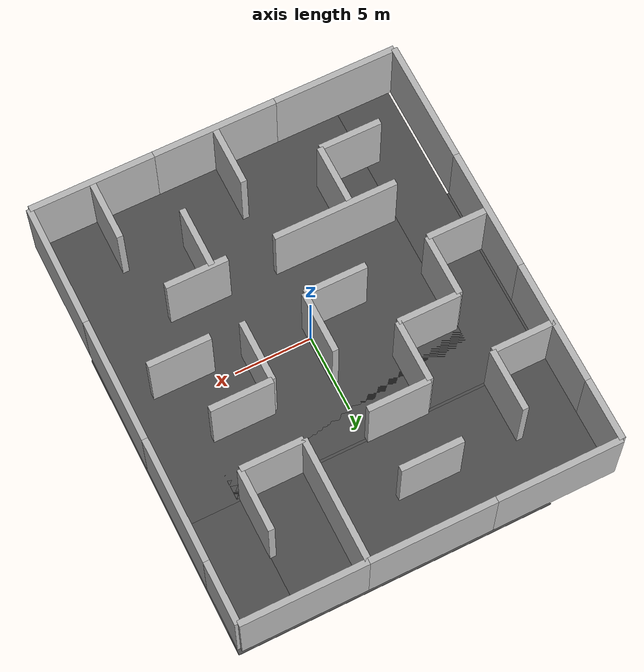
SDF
<sdf version="1.7">
 <world name="default">
  <scene>
   <sky><clouds><speed>3</speed></clouds></sky>
   <ambient>0.4 0.4 0.4 1</ambient>
   <background>0.7 0.7 0.7 1</background>
   <shadows>1</shadows>
  </scene>
  <plugin name="ros_interface_plugin" filename="librotors_gazebo_ros_interface_plugin.so"/>
  <physics name="default_physics" default="0" type="ode">
   <ode>
    <solver>
     <type>quick</type>
     <iters>35</iters>
     <sor>1.3</sor>
     <use_dynamic_moi_rescaling>0</use_dynamic_moi_rescaling>
    </solver>
    <constraints>
     <cfm>0</cfm>
     <erp>0.2</erp>
     <contact_max_correcting_vel>100</contact_max_correcting_vel>
     <contact_surface_layer>0.001</contact_surface_layer>
    </constraints>
   </ode>
   <max_step_size>0.004</max_step_size>
   <real_time_factor>1</real_time_factor>
   <real_time_update_rate>250</real_time_update_rate>
  </physics>
  <light name="sun_2" type="directional">
   <pose>0 0 500 0 -0 0</pose>
   <diffuse>0.95 0.95 0.95 1</diffuse>
   <specular>0.3 0.3 0.3 1</specular>
   <attenuation><range>2000</range><constant>1</constant><linear>0</linear><quadratic>0</quadratic></attenuation>
   <direction>-0.1 0.05 -1</direction>
   <spot><inner_angle>0</inner_angle><outer_angle>0</outer_angle><falloff>0</falloff></spot>
  </light>
  <model name="smaze2d">
   <frame name="w1::__model__" attached_to="w1::link">
    <pose relative_to="__model__">0 4 0 0 -0 1.5708</pose>
   </frame>
   <static>1</static>
   <link name="w1::link">
    <pose relative_to="w1::__model__">0 0 2.5 0 -0 0</pose>
    <collision name="collision"><geometry><box><size>8 0.4 5</size></box></geometry></collision>
    <visual name="visual">
     <geometry><box><size>8 0.4 5</size></box></geometry>
     <material>
      <script>
       <uri>model://smaze_wall/materials/scripts</uri>
       <uri>model://smaze_wall/materials/textures</uri>
       <name>vrc/smaze_wall</name>
      </script>
     </material>
    </visual>
   </link>
   <frame name="w2::__model__" attached_to="w2::link">
    <pose relative_to="__model__">0 12 0 0 -0 1.5708</pose>
   </frame>
   <static>1</static>
   <link name="w2::link">
    <pose relative_to="w2::__model__">0 0 2.5 0 -0 0</pose>
    <collision name="collision"><geometry><box><size>8 0.4 5</size></box></geometry></collision>
    <visual name="visual">
     <geometry><box><size>8 0.4 5</size></box></geometry>
     <material>
      <script>
       <uri>model://smaze_wall/materials/scripts</uri>
       <uri>model://smaze_wall/materials/textures</uri>
       <name>vrc/smaze_wall</name>
      </script>
     </material>
    </visual>
   </link>
   <frame name="w3::__model__" attached_to="w3::link">
    <pose relative_to="__model__">0 20 0 0 -0 1.5708</pose>
   </frame>
   <static>1</static>
   <link name="w3::link">
    <pose relative_to="w3::__model__">0 0 2.5 0 -0 0</pose>
    <collision name="collision"><geometry><box><size>8 0.4 5</size></box></geometry></collision>
    <visual name="visual">
     <geometry><box><size>8 0.4 5</size></box></geometry>
     <material>
      <script>
       <uri>model://smaze_wall/materials/scripts</uri>
       <uri>model://smaze_wall/materials/textures</uri>
       <name>vrc/smaze_wall</name>
      </script>
     </material>
    </visual>
   </link>
   <frame name="w4::__model__" attached_to="w4::link">
    <pose relative_to="__model__">0 26 0 0 -0 1.5708</pose>
   </frame>
   <static>1</static>
   <link name="w4::link">
    <pose relative_to="w4::__model__">0 0 2.5 0 -0 0</pose>
    <collision name="collision"><geometry><box><size>4 0.4 5</size></box></geometry></collision>
    <visual name="visual">
     <geometry><box><size>4 0.4 5</size></box></geometry>
     <material>
      <script>
       <uri>model://smaze_wall_short/materials/scripts</uri>
       <uri>model://smaze_wall_short/materials/textures</uri>
       <name>vrc/smaze_wall_short</name>
      </script>
     </material>
    </visual>
   </link>
   <frame name="w5::__model__" attached_to="w5::link">
    <pose relative_to="__model__">24 4 0 0 -0 1.5708</pose>
   </frame>
   <static>1</static>
   <link name="w5::link">
    <pose relative_to="w5::__model__">0 0 2.5 0 -0 0</pose>
    <collision name="collision"><geometry><box><size>8 0.4 5</size></box></geometry></collision>
    <visual name="visual">
     <geometry><box><size>8 0.4 5</size></box></geometry>
     <material>
      <script>
       <uri>model://smaze_wall/materials/scripts</uri>
       <uri>model://smaze_wall/materials/textures</uri>
       <name>vrc/smaze_wall</name>
      </script>
     </material>
    </visual>
   </link>
   <frame name="w6::__model__" attached_to="w6::link">
    <pose relative_to="__model__">24 12 0 0 -0 1.5708</pose>
   </frame>
   <static>1</static>
   <link name="w6::link">
    <pose relative_to="w6::__model__">0 0 2.5 0 -0 0</pose>
    <collision name="collision"><geometry><box><size>8 0.4 5</size></box></geometry></collision>
    <visual name="visual">
     <geometry><box><size>8 0.4 5</size></box></geometry>
     <material>
      <script>
       <uri>model://smaze_wall/materials/scripts</uri>
       <uri>model://smaze_wall/materials/textures</uri>
       <name>vrc/smaze_wall</name>
      </script>
     </material>
    </visual>
   </link>
   <frame name="w7::__model__" attached_to="w7::link">
    <pose relative_to="__model__">24 20 0 0 -0 1.5708</pose>
   </frame>
   <static>1</static>
   <link name="w7::link">
    <pose relative_to="w7::__model__">0 0 2.5 0 -0 0</pose>
    <collision name="collision"><geometry><box><size>8 0.4 5</size></box></geometry></collision>
    <visual name="visual">
     <geometry><box><size>8 0.4 5</size></box></geometry>
     <material>
      <script>
       <uri>model://smaze_wall/materials/scripts</uri>
       <uri>model://smaze_wall/materials/textures</uri>
       <name>vrc/smaze_wall</name>
      </script>
     </material>
    </visual>
   </link>
   <frame name="w8::__model__" attached_to="w8::link">
    <pose relative_to="__model__">24 26 0 0 -0 1.5708</pose>
   </frame>
   <static>1</static>
   <link name="w8::link">
    <pose relative_to="w8::__model__">0 0 2.5 0 -0 0</pose>
    <collision name="collision"><geometry><box><size>4 0.4 5</size></box></geometry></collision>
    <visual name="visual">
     <geometry><box><size>4 0.4 5</size></box></geometry>
     <material>
      <script>
       <uri>model://smaze_wall_short/materials/scripts</uri>
       <uri>model://smaze_wall_short/materials/textures</uri>
       <name>vrc/smaze_wall_short</name>
      </script>
     </material>
    </visual>
   </link>
   <frame name="w11::__model__" attached_to="w11::link"><pose relative_to="__model__">4 0 0 0 -0 0</pose></frame>
   <static>1</static>
   <link name="w11::link">
    <pose relative_to="w11::__model__">0 0 2.5 0 -0 0</pose>
    <collision name="collision"><geometry><box><size>8 0.4 5</size></box></geometry></collision>
    <visual name="visual">
     <geometry><box><size>8 0.4 5</size></box></geometry>
     <material>
      <script>
       <uri>model://smaze_wall/materials/scripts</uri>
       <uri>model://smaze_wall/materials/textures</uri>
       <name>vrc/smaze_wall</name>
      </script>
     </material>
    </visual>
   </link>
   <frame name="w12::__model__" attached_to="w12::link">
    <pose relative_to="__model__">12 0 0 0 -0 0</pose>
   </frame>
   <static>1</static>
   <link name="w12::link">
    <pose relative_to="w12::__model__">0 0 2.5 0 -0 0</pose>
    <collision name="collision"><geometry><box><size>8 0.4 5</size></box></geometry></collision>
    <visual name="visual">
     <geometry><box><size>8 0.4 5</size></box></geometry>
     <material>
      <script>
       <uri>model://smaze_wall/materials/scripts</uri>
       <uri>model://smaze_wall/materials/textures</uri>
       <name>vrc/smaze_wall</name>
      </script>
     </material>
    </visual>
   </link>
   <frame name="w13::__model__" attached_to="w13::link">
    <pose relative_to="__model__">20 0 0 0 -0 0</pose>
   </frame>
   <static>1</static>
   <link name="w13::link">
    <pose relative_to="w13::__model__">0 0 2.5 0 -0 0</pose>
    <collision name="collision"><geometry><box><size>8 0.4 5</size></box></geometry></collision>
    <visual name="visual">
     <geometry><box><size>8 0.4 5</size></box></geometry>
     <material>
      <script>
       <uri>model://smaze_wall/materials/scripts</uri>
       <uri>model://smaze_wall/materials/textures</uri>
       <name>vrc/smaze_wall</name>
      </script>
     </material>
    </visual>
   </link>
   <frame name="w14::__model__" attached_to="w14::link">
    <pose relative_to="__model__">4 28 0 0 -0 0</pose>
   </frame>
   <static>1</static>
   <link name="w14::link">
    <pose relative_to="w14::__model__">0 0 2.5 0 -0 0</pose>
    <collision name="collision"><geometry><box><size>8 0.4 5</size></box></geometry></collision>
    <visual name="visual">
     <geometry><box><size>8 0.4 5</size></box></geometry>
     <material>
      <script>
       <uri>model://smaze_wall/materials/scripts</uri>
       <uri>model://smaze_wall/materials/textures</uri>
       <name>vrc/smaze_wall</name>
      </script>
     </material>
    </visual>
   </link>
   <frame name="w15::__model__" attached_to="w15::link">
    <pose relative_to="__model__">12 28 0 0 -0 0</pose>
   </frame>
   <static>1</static>
   <link name="w15::link">
    <pose relative_to="w15::__model__">0 0 2.5 0 -0 0</pose>
    <collision name="collision"><geometry><box><size>8 0.4 5</size></box></geometry></collision>
    <visual name="visual">
     <geometry><box><size>8 0.4 5</size></box></geometry>
     <material>
      <script>
       <uri>model://smaze_wall/materials/scripts</uri>
       <uri>model://smaze_wall/materials/textures</uri>
       <name>vrc/smaze_wall</name>
      </script>
     </material>
    </visual>
   </link>
   <frame name="w16::__model__" attached_to="w16::link">
    <pose relative_to="__model__">20 28 0 0 -0 0</pose>
   </frame>
   <static>1</static>
   <link name="w16::link">
    <pose relative_to="w16::__model__">0 0 2.5 0 -0 0</pose>
    <collision name="collision"><geometry><box><size>8 0.4 5</size></box></geometry></collision>
    <visual name="visual">
     <geometry><box><size>8 0.4 5</size></box></geometry>
     <material>
      <script>
       <uri>model://smaze_wall/materials/scripts</uri>
       <uri>model://smaze_wall/materials/textures</uri>
       <name>vrc/smaze_wall</name>
      </script>
     </material>
    </visual>
   </link>
   <frame name="w17::__model__" attached_to="w17::link">
    <pose relative_to="__model__">10 24 0 0 -0 0</pose>
   </frame>
   <static>1</static>
   <link name="w17::link">
    <pose relative_to="w17::__model__">0 0 2.5 0 -0 0</pose>
    <collision name="collision"><geometry><box><size>4 0.4 5</size></box></geometry></collision>
    <visual name="visual">
     <geometry><box><size>4 0.4 5</size></box></geometry>
     <material>
      <script>
       <uri>model://smaze_wall_short/materials/scripts</uri>
       <uri>model://smaze_wall_short/materials/textures</uri>
       <name>vrc/smaze_wall_short</name>
      </script>
     </material>
    </visual>
   </link>
   <frame name="w18::__model__" attached_to="w18::link">
    <pose relative_to="__model__">10 12 0 0 -0 0</pose>
   </frame>
   <static>1</static>
   <link name="w18::link">
    <pose relative_to="w18::__model__">0 0 2.5 0 -0 0</pose>
    <collision name="collision"><geometry><box><size>4 0.4 5</size></box></geometry></collision>
    <visual name="visual">
     <geometry><box><size>4 0.4 5</size></box></geometry>
     <material>
      <script>
       <uri>model://smaze_wall_short/materials/scripts</uri>
       <uri>model://smaze_wall_short/materials/textures</uri>
       <name>vrc/smaze_wall_short</name>
      </script>
     </material>
    </visual>
   </link>
   <frame name="w19::__model__" attached_to="w19::link"><pose relative_to="__model__">8 8 0 0 -0 0</pose></frame>
   <static>1</static>
   <link name="w19::link">
    <pose relative_to="w19::__model__">0 0 2.5 0 -0 0</pose>
    <collision name="collision"><geometry><box><size>8 0.4 5</size></box></geometry></collision>
    <visual name="visual">
     <geometry><box><size>8 0.4 5</size></box></geometry>
     <material>
      <script>
       <uri>model://smaze_wall/materials/scripts</uri>
       <uri>model://smaze_wall/materials/textures</uri>
       <name>vrc/smaze_wall</name>
      </script>
     </material>
    </visual>
   </link>
   <frame name="w20::__model__" attached_to="w20::link"><pose relative_to="__model__">5 4 0 0 -0 0</pose></frame>
   <static>1</static>
   <link name="w20::link">
    <pose relative_to="w20::__model__">0 0 2.5 0 -0 0</pose>
    <collision name="collision"><geometry><box><size>4 0.4 5</size></box></geometry></collision>
    <visual name="visual">
     <geometry><box><size>4 0.4 5</size></box></geometry>
     <material>
      <script>
       <uri>model://smaze_wall_short/materials/scripts</uri>
       <uri>model://smaze_wall_short/materials/textures</uri>
       <name>vrc/smaze_wall_short</name>
      </script>
     </material>
    </visual>
   </link>
   <frame name="w21::__model__" attached_to="w21::link">
    <pose relative_to="__model__">17 8 0 0 -0 0</pose>
   </frame>
   <static>1</static>
   <link name="w21::link">
    <pose relative_to="w21::__model__">0 0 2.5 0 -0 0</pose>
    <collision name="collision"><geometry><box><size>4 0.4 5</size></box></geometry></collision>
    <visual name="visual">
     <geometry><box><size>4 0.4 5</size></box></geometry>
     <material>
      <script>
       <uri>model://smaze_wall_short/materials/scripts</uri>
       <uri>model://smaze_wall_short/materials/textures</uri>
       <name>vrc/smaze_wall_short</name>
      </script>
     </material>
    </visual>
   </link>
   <frame name="w22::__model__" attached_to="w22::link">
    <pose relative_to="__model__">20 12 0 0 -0 0</pose>
   </frame>
   <static>1</static>
   <link name="w22::link">
    <pose relative_to="w22::__model__">0 0 2.5 0 -0 0</pose>
    <collision name="collision"><geometry><box><size>4 0.4 5</size></box></geometry></collision>
    <visual name="visual">
     <geometry><box><size>4 0.4 5</size></box></geometry>
     <material>
      <script>
       <uri>model://smaze_wall_short/materials/scripts</uri>
       <uri>model://smaze_wall_short/materials/textures</uri>
       <name>vrc/smaze_wall_short</name>
      </script>
     </material>
    </visual>
   </link>
   <frame name="w23::__model__" attached_to="w23::link">
    <pose relative_to="__model__">16 24 0 0 -0 1.5708</pose>
   </frame>
   <static>1</static>
   <link name="w23::link">
    <pose relative_to="w23::__model__">0 0 2.5 0 -0 0</pose>
    <collision name="collision"><geometry><box><size>8 0.4 5</size></box></geometry></collision>
    <visual name="visual">
     <geometry><box><size>8 0.4 5</size></box></geometry>
     <material>
      <script>
       <uri>model://smaze_wall/materials/scripts</uri>
       <uri>model://smaze_wall/materials/textures</uri>
       <name>vrc/smaze_wall</name>
      </script>
     </material>
    </visual>
   </link>
   <frame name="s1::__model__" attached_to="s1::link">
    <pose relative_to="__model__">20 22 0 0 -0 1.5708</pose>
   </frame>
   <static>1</static>
   <link name="s1::link">
    <pose relative_to="s1::__model__">0 0 2.5 0 -0 0</pose>
    <collision name="collision"><geometry><box><size>4 0.4 5</size></box></geometry></collision>
    <visual name="visual">
     <geometry><box><size>4 0.4 5</size></box></geometry>
     <material>
      <script>
       <uri>model://smaze_wall_short/materials/scripts</uri>
       <uri>model://smaze_wall_short/materials/textures</uri>
       <name>vrc/smaze_wall_short</name>
      </script>
     </material>
    </visual>
   </link>
   <frame name="s2::__model__" attached_to="s2::link">
    <pose relative_to="__model__">16 14 0 0 -0 1.5708</pose>
   </frame>
   <static>1</static>
   <link name="s2::link">
    <pose relative_to="s2::__model__">0 0 2.5 0 -0 0</pose>
    <collision name="collision"><geometry><box><size>4 0.4 5</size></box></geometry></collision>
    <visual name="visual">
     <geometry><box><size>4 0.4 5</size></box></geometry>
     <material>
      <script>
       <uri>model://smaze_wall_short/materials/scripts</uri>
       <uri>model://smaze_wall_short/materials/textures</uri>
       <name>vrc/smaze_wall_short</name>
      </script>
     </material>
    </visual>
   </link>
   <frame name="s3::__model__" attached_to="s3::link">
    <pose relative_to="__model__">16 6 0 0 -0 1.5708</pose>
   </frame>
   <static>1</static>
   <link name="s3::link">
    <pose relative_to="s3::__model__">0 0 2.5 0 -0 0</pose>
    <collision name="collision"><geometry><box><size>4 0.4 5</size></box></geometry></collision>
    <visual name="visual">
     <geometry><box><size>4 0.4 5</size></box></geometry>
     <material>
      <script>
       <uri>model://smaze_wall_short/materials/scripts</uri>
       <uri>model://smaze_wall_short/materials/textures</uri>
       <name>vrc/smaze_wall_short</name>
      </script>
     </material>
    </visual>
   </link>
   <frame name="s4::__model__" attached_to="s4::link">
    <pose relative_to="__model__">20 2 0 0 -0 1.5708</pose>
   </frame>
   <static>1</static>
   <link name="s4::link">
    <pose relative_to="s4::__model__">0 0 2.5 0 -0 0</pose>
    <collision name="collision"><geometry><box><size>4 0.4 5</size></box></geometry></collision>
    <visual name="visual">
     <geometry><box><size>4 0.4 5</size></box></geometry>
     <material>
      <script>
       <uri>model://smaze_wall_short/materials/scripts</uri>
       <uri>model://smaze_wall_short/materials/textures</uri>
       <name>vrc/smaze_wall_short</name>
      </script>
     </material>
    </visual>
   </link>
   <frame name="s5::__model__" attached_to="s5::link">
    <pose relative_to="__model__">12 2 0 0 -0 1.5708</pose>
   </frame>
   <static>1</static>
   <link name="s5::link">
    <pose relative_to="s5::__model__">0 0 2.5 0 -0 0</pose>
    <collision name="collision"><geometry><box><size>4 0.4 5</size></box></geometry></collision>
    <visual name="visual">
     <geometry><box><size>4 0.4 5</size></box></geometry>
     <material>
      <script>
       <uri>model://smaze_wall_short/materials/scripts</uri>
       <uri>model://smaze_wall_short/materials/textures</uri>
       <name>vrc/smaze_wall_short</name>
      </script>
     </material>
    </visual>
   </link>
   <frame name="s6::__model__" attached_to="s6::link">
    <pose relative_to="__model__">7 6 0 0 -0 1.5708</pose>
   </frame>
   <static>1</static>
   <link name="s6::link">
    <pose relative_to="s6::__model__">0 0 2.5 0 -0 0</pose>
    <collision name="collision"><geometry><box><size>4 0.4 5</size></box></geometry></collision>
    <visual name="visual">
     <geometry><box><size>4 0.4 5</size></box></geometry>
     <material>
      <script>
       <uri>model://smaze_wall_short/materials/scripts</uri>
       <uri>model://smaze_wall_short/materials/textures</uri>
       <name>vrc/smaze_wall_short</name>
      </script>
     </material>
    </visual>
   </link>
   <frame name="s7::__model__" attached_to="s7::link">
    <pose relative_to="__model__">4 14 0 0 -0 1.5708</pose>
   </frame>
   <static>1</static>
   <link name="s7::link">
    <pose relative_to="s7::__model__">0 0 2.5 0 -0 0</pose>
    <collision name="collision"><geometry><box><size>4 0.4 5</size></box></geometry></collision>
    <visual name="visual">
     <geometry><box><size>4 0.4 5</size></box></geometry>
     <material>
      <script>
       <uri>model://smaze_wall_short/materials/scripts</uri>
       <uri>model://smaze_wall_short/materials/textures</uri>
       <name>vrc/smaze_wall_short</name>
      </script>
     </material>
    </visual>
   </link>
   <frame name="s8::__model__" attached_to="s8::link">
    <pose relative_to="__model__">8 18 0 0 -0 1.5708</pose>
   </frame>
   <static>1</static>
   <link name="s8::link">
    <pose relative_to="s8::__model__">0 0 2.5 0 -0 0</pose>
    <collision name="collision"><geometry><box><size>4 0.4 5</size></box></geometry></collision>
    <visual name="visual">
     <geometry><box><size>4 0.4 5</size></box></geometry>
     <material>
      <script>
       <uri>model://smaze_wall_short/materials/scripts</uri>
       <uri>model://smaze_wall_short/materials/textures</uri>
       <name>vrc/smaze_wall_short</name>
      </script>
     </material>
    </visual>
   </link>
   <frame name="s9::__model__" attached_to="s9::link">
    <pose relative_to="__model__">4 22 0 0 -0 1.5708</pose>
   </frame>
   <static>1</static>
   <link name="s9::link">
    <pose relative_to="s9::__model__">0 0 2.5 0 -0 0</pose>
    <collision name="collision"><geometry><box><size>4 0.4 5</size></box></geometry></collision>
    <visual name="visual">
     <geometry><box><size>4 0.4 5</size></box></geometry>
     <material>
      <script>
       <uri>model://smaze_wall_short/materials/scripts</uri>
       <uri>model://smaze_wall_short/materials/textures</uri>
       <name>vrc/smaze_wall_short</name>
      </script>
     </material>
    </visual>
   </link>
   <frame name="s10::__model__" attached_to="s10::link">
    <pose relative_to="__model__">12 14 0 0 -0 1.5708</pose>
   </frame>
   <static>1</static>
   <link name="s10::link">
    <pose relative_to="s10::__model__">0 0 2.5 0 -0 0</pose>
    <collision name="collision"><geometry><box><size>4 0.4 5</size></box></geometry></collision>
    <visual name="visual">
     <geometry><box><size>4 0.4 5</size></box></geometry>
     <material>
      <script>
       <uri>model://smaze_wall_short/materials/scripts</uri>
       <uri>model://smaze_wall_short/materials/textures</uri>
       <name>vrc/smaze_wall_short</name>
      </script>
     </material>
    </visual>
   </link>
   <frame name="v1::__model__" attached_to="v1::link"><pose relative_to="__model__">2 12 0 0 -0 0</pose></frame>
   <static>1</static>
   <link name="v1::link">
    <pose relative_to="v1::__model__">0 0 2.5 0 -0 0</pose>
    <collision name="collision"><geometry><box><size>4 0.4 5</size></box></geometry></collision>
    <visual name="visual">
     <geometry><box><size>4 0.4 5</size></box></geometry>
     <material>
      <script>
       <uri>model://smaze_wall_short/materials/scripts</uri>
       <uri>model://smaze_wall_short/materials/textures</uri>
       <name>vrc/smaze_wall_short</name>
      </script>
     </material>
    </visual>
   </link>
   <frame name="v2::__model__" attached_to="v2::link"><pose relative_to="__model__">2 20 0 0 -0 0</pose></frame>
   <static>1</static>
   <link name="v2::link">
    <pose relative_to="v2::__model__">0 0 2.5 0 -0 0</pose>
    <collision name="collision"><geometry><box><size>4 0.4 5</size></box></geometry></collision>
    <visual name="visual">
     <geometry><box><size>4 0.4 5</size></box></geometry>
     <material>
      <script>
       <uri>model://smaze_wall_short/materials/scripts</uri>
       <uri>model://smaze_wall_short/materials/textures</uri>
       <name>vrc/smaze_wall_short</name>
      </script>
     </material>
    </visual>
   </link>
   <frame name="v3::__model__" attached_to="v3::link"><pose relative_to="__model__">6 16 0 0 -0 0</pose></frame>
   <static>1</static>
   <link name="v3::link">
    <pose relative_to="v3::__model__">0 0 2.5 0 -0 0</pose>
    <collision name="collision"><geometry><box><size>4 0.4 5</size></box></geometry></collision>
    <visual name="visual">
     <geometry><box><size>4 0.4 5</size></box></geometry>
     <material>
      <script>
       <uri>model://smaze_wall_short/materials/scripts</uri>
       <uri>model://smaze_wall_short/materials/textures</uri>
       <name>vrc/smaze_wall_short</name>
      </script>
     </material>
    </visual>
   </link>
   <frame name="v4::__model__" attached_to="v4::link"><pose relative_to="__model__">10 20 0 0 -0 0</pose></frame>
   <static>1</static>
   <link name="v4::link">
    <pose relative_to="v4::__model__">0 0 2.5 0 -0 0</pose>
    <collision name="collision"><geometry><box><size>4 0.4 5</size></box></geometry></collision>
    <visual name="visual">
     <geometry><box><size>4 0.4 5</size></box></geometry>
     <material>
      <script>
       <uri>model://smaze_wall_short/materials/scripts</uri>
       <uri>model://smaze_wall_short/materials/textures</uri>
       <name>vrc/smaze_wall_short</name>
      </script>
     </material>
    </visual>
   </link>
   <frame name="v5::__model__" attached_to="v5::link"><pose relative_to="__model__">18 16 0 0 -0 0</pose></frame>
   <static>1</static>
   <link name="v5::link">
    <pose relative_to="v5::__model__">0 0 2.5 0 -0 0</pose>
    <collision name="collision"><geometry><box><size>4 0.4 5</size></box></geometry></collision>
    <visual name="visual">
     <geometry><box><size>4 0.4 5</size></box></geometry>
     <material>
      <script>
       <uri>model://smaze_wall_short/materials/scripts</uri>
       <uri>model://smaze_wall_short/materials/textures</uri>
       <name>vrc/smaze_wall_short</name>
      </script>
     </material>
    </visual>
   </link>
   <frame name="v6::__model__" attached_to="v6::link"><pose relative_to="__model__">18 20 0 0 -0 0</pose></frame>
   <static>1</static>
   <link name="v6::link">
    <pose relative_to="v6::__model__">0 0 2.5 0 -0 0</pose>
    <collision name="collision"><geometry><box><size>4 0.4 5</size></box></geometry></collision>
    <visual name="visual">
     <geometry><box><size>4 0.4 5</size></box></geometry>
     <material>
      <script>
       <uri>model://smaze_wall_short/materials/scripts</uri>
       <uri>model://smaze_wall_short/materials/textures</uri>
       <name>vrc/smaze_wall_short</name>
      </script>
     </material>
    </visual>
   </link>
   <pose>-12.014 -12.8578 0 0 -0 0</pose>
  </model>
  <gravity>0 0 -9.8066</gravity>
  <magnetic_field>6e-06 2.3e-05 -4.2e-05</magnetic_field>
  <atmosphere type="adiabatic"/>
  <spherical_coordinates>
   <surface_model>EARTH_WGS84</surface_model>
   <latitude_deg>0</latitude_deg>
   <longitude_deg>0</longitude_deg>
   <elevation>0</elevation>
   <heading_deg>0</heading_deg>
  </spherical_coordinates>
  <model name="asphalt_plane">
   <static>1</static>
   <link name="link">
    <collision name="collision"><geometry><box><size>20 20 0.1</size></box></geometry></collision>
    <visual name="visual">
     <cast_shadows>0</cast_shadows>
     <geometry><box><size>20 20 0.1</size></box></geometry>
     <material>
      <script>
       <uri>model://asphalt_plane/materials/scripts</uri>
       <uri>model://asphalt_plane/materials/textures</uri>
       <name>vrc/asphalt</name>
      </script>
     </material>
    </visual>
   </link>
   <pose>2.24225 5.43968 0 0 -0 0</pose>
  </model>
  <model name="asphalt_plane_0">
   <static>1</static>
   <link name="link">
    <collision name="collision"><geometry><box><size>20 20 0.1</size></box></geometry></collision>
    <visual name="visual">
     <cast_shadows>0</cast_shadows>
     <geometry><box><size>20 20 0.1</size></box></geometry>
     <material>
      <script>
       <uri>model://asphalt_plane/materials/scripts</uri>
       <uri>model://asphalt_plane/materials/textures</uri>
       <name>vrc/asphalt</name>
      </script>
     </material>
    </visual>
   </link>
   <pose>1.84294 -2.74467 0 0 -0 0</pose>
  </model>
  <model name="asphalt_plane_1">
   <static>1</static>
   <link name="link">
    <collision name="collision"><geometry><box><size>20 20 0.1</size></box></geometry></collision>
    <visual name="visual">
     <cast_shadows>0</cast_shadows>
     <geometry><box><size>20 20 0.1</size></box></geometry>
     <material>
      <script>
       <uri>model://asphalt_plane/materials/scripts</uri>
       <uri>model://asphalt_plane/materials/textures</uri>
       <name>vrc/asphalt</name>
      </script>
     </material>
    </visual>
   </link>
   <pose>-1.87468 5.14484 0 0 -0 0</pose>
  </model>
  <model name="asphalt_plane_2">
   <static>1</static>
   <link name="link">
    <collision name="collision"><geometry><box><size>20 20 0.1</size></box></geometry></collision>
    <visual name="visual">
     <cast_shadows>0</cast_shadows>
     <geometry><box><size>20 20 0.1</size></box></geometry>
     <material>
      <script>
       <uri>model://asphalt_plane/materials/scripts</uri>
       <uri>model://asphalt_plane/materials/textures</uri>
       <name>vrc/asphalt</name>
      </script>
     </material>
    </visual>
   </link>
   <pose>-1.66367 -2.91551 0 0 -0 0</pose>
  </model>
 </world>
</sdf>
